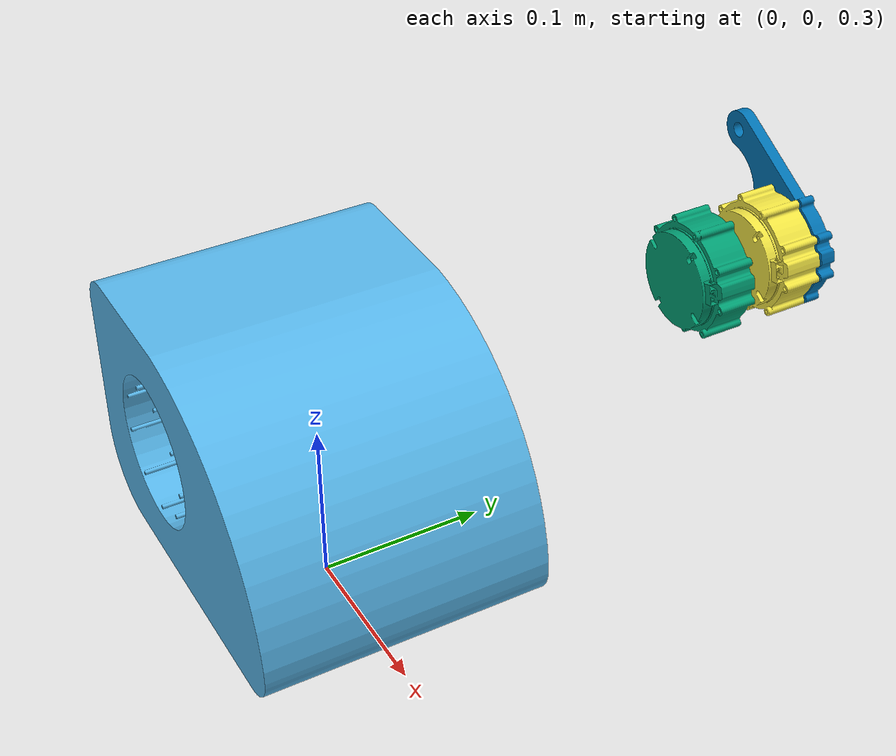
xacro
<?xml version="1.0"?>
<robot xmlns:xacro="http://www.ros.org/wiki/xacro" name="otto">
    <!-- Declare PI -->
    <xacro:property name="PI" value="3.14159265359"/>
    <xacro:include filename="inertial_macros.xacro"/>
    <link name="world"></link>

    <joint name="base_joint" type="fixed">
      <origin xyz="0 0 0.40" rpy="0 0 0"/>
      <parent link="world"/>
      <child link="base_link"/>
    </joint>

    <!-- Base Link -->
    <link name="base_link">
        <inertial>
          <origin xyz="-0.03 0.0 0.0" rpy="0 0 0"/>
          <mass value="5.0"/>
          <inertia ixx="0.553912" iyy="1.227224" izz="1.101448" ixy="-0.0" iyz="-0.0" ixz="0.005005"/>
        </inertial>

        <visual>
            <origin rpy="0.0 0.0 0.0" xyz="0.0 0.0 0.0"/>
            <geometry>
              <mesh filename='file:///$(find otto_simulation)/meshes/Body.STL' scale="0.001 0.001 0.001"/>
            </geometry>
        </visual>

        <collision>
            <origin rpy="0.0 0.0 0.0" xyz="0.0 0.0 0.0"/>
            <geometry>
                <box size="0.20 0.19 0.15"/>
            </geometry>
        </collision>
    </link>

    <!-- Hip Motor Left -->
    <link name="hip_motorL">
      <xacro:inertial_box mass="10.5" x="0.3" y="0.3" z="0.15">
        <origin xyz="0.15 0 0.075" rpy="0 0 0"/>
      </xacro:inertial_box>
      <visual>
          <origin rpy="0.0 0.0 0.0" xyz="0.0 0.0 0.0"/>
          <geometry>
            <mesh filename='file:///$(find otto_simulation)/meshes/CyberGearmotor.STL' scale="0.001 0.001 0.001"/>
          </geometry>
      </visual>
    </link>

    <!-- Knee Motor Left -->
    <link name="knee_motorL">
      <inertial>
        <origin xyz="0.00 0.0 0.0" rpy="0 0 0"/>
        <mass value="2e-6"/>
        <inertia ixx="1.1e-9" iyy="1.1e-9" izz="1.1e-9" ixy="0.0" iyz="0.0" ixz="0.0"/>
      </inertial>
      <visual>
          <origin rpy="0.0 0.0 0.0" xyz="0.0 0.0 0.0"/>
          <geometry>
            <mesh filename='file:///$(find otto_simulation)/meshes/CyberGearmotor.STL' scale="0.001 0.001 0.001"/>
          </geometry>
      </visual>
    </link>

    <!-- Hip link Left -->
    <link name="hip_linkL">
      <inertial>
        <origin xyz="0.005 0.0 0.0" rpy="0 0 0"/>
        <mass value="5"/>
        <inertia ixx="1.1e-9" iyy="1.1e-9" izz="1.1e-9" ixy="0.0" iyz="0.0" ixz="0.0"/>
      </inertial>
      <visual>
          <origin rpy="0.0 0.0 0.0" xyz="0.0 0.0 0.0"/>
          <geometry>
            <mesh filename='file:///$(find otto_simulation)/meshes/link1.STL' scale="0.001 0.001 0.001"/>
          </geometry>
      </visual>
    </link>

    <joint name="hip_jointL" type="revolute">
      <parent link="base_link"/>
      <child link="hip_motorL"/>
        <origin rpy="0.0 0.0 0.0" xyz="-0.03 0.26 0.0"/>
        <axis xyz="0.0 1.0 0.0"/>
        <limit
        lower="-3.1459"
        upper="3.1459"
        velocity="1000.0"
        effort="1000.0"/>
    </joint>

    <joint name="hip_motorL_to_knee_motorL" type="fixed">
      <parent link="hip_motorL"/>
      <child link="knee_motorL"/>
      <origin rpy="0.0 0.0 0.0" xyz="0.0 0.05 0.0"/>
    </joint>

    <joint name="hip_motorL_to_hip_linkL" type="fixed">
      <parent link="knee_motorL"/>
      <child link="hip_linkL"/>
      <origin rpy="0.0 0.0 0.0" xyz="0.0 0.035 0.0"/>
    </joint>

</robot>
